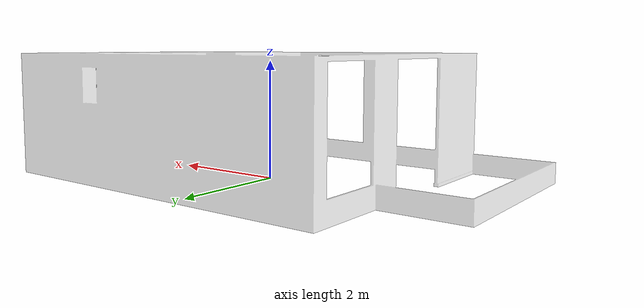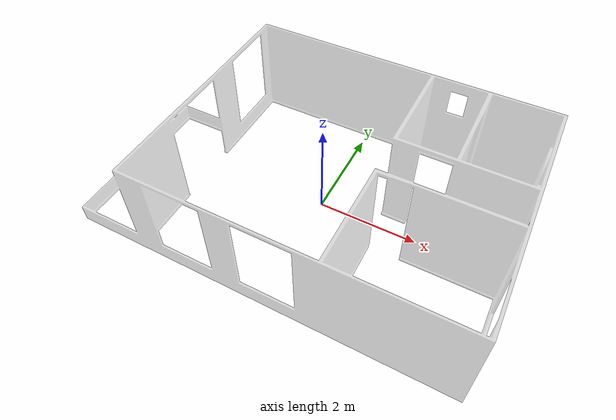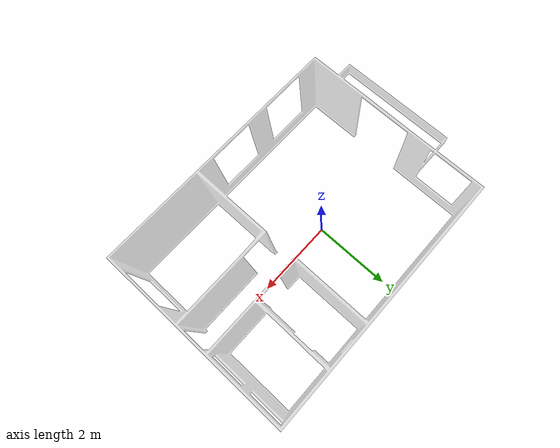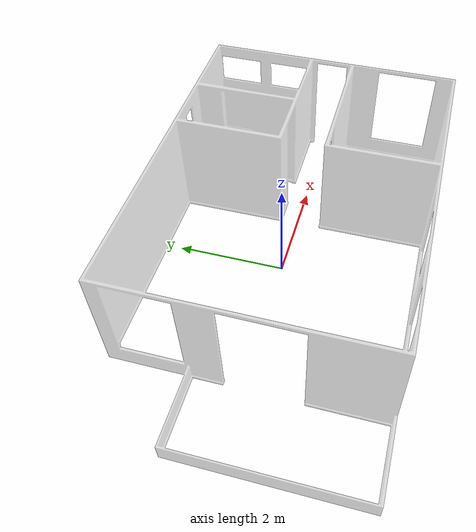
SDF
<?xml version="1.0" ?>
<sdf version="1.5">
  <model name="unit-walls">
    <static>true</static>
    <link name="link">
        <collision name="collision">
         <pose>0.0 0.0 0.015 0 0 0</pose>
         <geometry>
            <mesh>
                <uri>model://wall/meshes/walls_col.stl</uri>
            </mesh>
        </geometry>
      </collision>
      <visual name="visual">
        <cast_shadows>false</cast_shadows>
        <transparency>0.55</transparency>
        <pose>0.0 0.0 0.015 0 0 0</pose>
        <geometry>
            <mesh>
                <uri>model://wall/meshes/walls.dae</uri>
            </mesh>
        </geometry>
      </visual>
    </link>
  </model>
</sdf>
